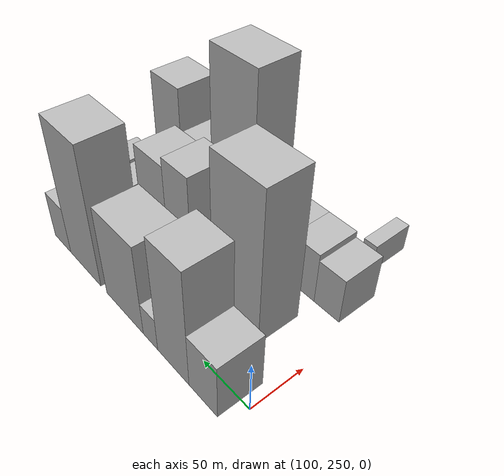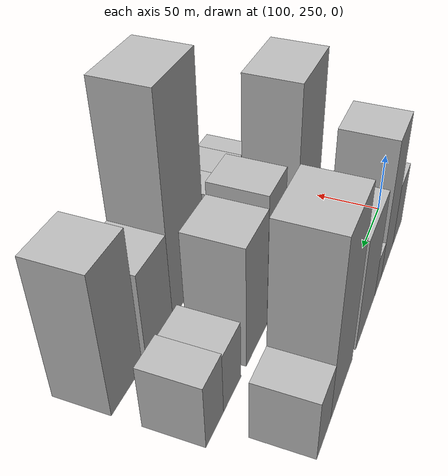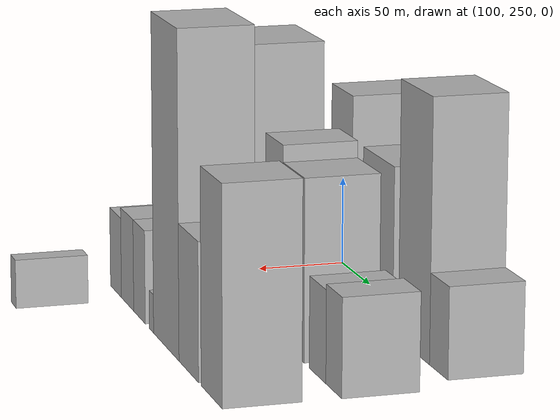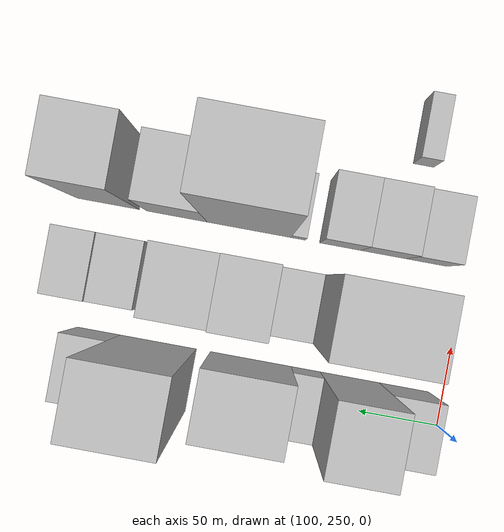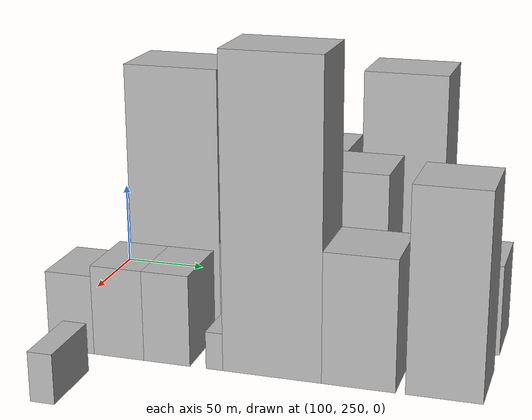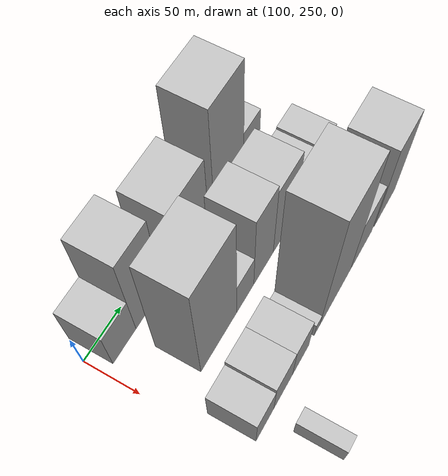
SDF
<sdf version="1.6">
 <world name="default">
  <model name="building_35">
   <static>1</static>
   <pose>100.0000 275.1679 0 0.000000 0.000000 0.000000</pose>
   <link name="link">
    <pose>0 0 27.00 0 0 0</pose>
    <collision name="collision"><geometry><box><size>40.0000 31.4303 54.0000</size></box></geometry></collision>
    <visual name="visual">
     <cast_shadows>0</cast_shadows>
     <geometry><box><size>40.0000 31.4303 54.0000</size></box></geometry>
     <material>
      <script>
       <uri>model://HANNAS_wall/materials/scripts</uri>
       <uri>model://HANNAS_wall/materials/textures</uri>
       <name>vrc/HANNAS_wall</name>
      </script>
     </material>
    </visual>
   </link>
  </model>
  <model name="building_36">
   <static>1</static>
   <pose>100.0000 309.7557 0 0.000000 0.000000 0.000000</pose>
   <link name="link">
    <pose>0 0 57.00 0 0 0</pose>
    <collision name="collision"><geometry><box><size>40.0000 37.7454 114.0000</size></box></geometry></collision>
    <visual name="visual">
     <cast_shadows>0</cast_shadows>
     <geometry><box><size>40.0000 37.7454 114.0000</size></box></geometry>
     <material>
      <script>
       <uri>model://HANNAS_wall/materials/scripts</uri>
       <uri>model://HANNAS_wall/materials/textures</uri>
       <name>vrc/HANNAS_wall</name>
      </script>
     </material>
    </visual>
   </link>
  </model>
  <model name="building_37">
   <static>1</static>
   <pose>100.0000 337.9935 0 0.000000 0.000000 0.000000</pose>
   <link name="link">
    <pose>0 0 16.50 0 0 0</pose>
    <collision name="collision"><geometry><box><size>40.0000 18.7301 33.0000</size></box></geometry></collision>
    <visual name="visual">
     <cast_shadows>0</cast_shadows>
     <geometry><box><size>40.0000 18.7301 33.0000</size></box></geometry>
     <material>
      <script>
       <uri>model://HANNAS_wall/materials/scripts</uri>
       <uri>model://HANNAS_wall/materials/textures</uri>
       <name>vrc/HANNAS_wall</name>
      </script>
     </material>
    </visual>
   </link>
  </model>
  <model name="building_38">
   <static>1</static>
   <pose>100.0000 373.1869 0 0.000000 0.000000 0.000000</pose>
   <link name="link">
    <pose>0 0 45.00 0 0 0</pose>
    <collision name="collision"><geometry><box><size>40.0000 51.6567 90.0000</size></box></geometry></collision>
    <visual name="visual">
     <cast_shadows>0</cast_shadows>
     <geometry><box><size>40.0000 51.6567 90.0000</size></box></geometry>
     <material>
      <script>
       <uri>model://HANNAS_wall/materials/scripts</uri>
       <uri>model://HANNAS_wall/materials/textures</uri>
       <name>vrc/HANNAS_wall</name>
      </script>
     </material>
    </visual>
   </link>
  </model>
  <model name="building_39">
   <static>1</static>
   <pose>100.0000 432.4017 0 0.000000 0.000000 0.000000</pose>
   <link name="link">
    <pose>0 0 69.00 0 0 0</pose>
    <collision name="collision"><geometry><box><size>40.0000 48.7731 138.0000</size></box></geometry></collision>
    <visual name="visual">
     <cast_shadows>0</cast_shadows>
     <geometry><box><size>40.0000 48.7731 138.0000</size></box></geometry>
     <material>
      <script>
       <uri>model://HANNAS_wall/materials/scripts</uri>
       <uri>model://HANNAS_wall/materials/textures</uri>
       <name>vrc/HANNAS_wall</name>
      </script>
     </material>
    </visual>
   </link>
  </model>
  <model name="building_40">
   <static>1</static>
   <pose>100.0000 470.5657 0 0.000000 0.000000 0.000000</pose>
   <link name="link">
    <pose>0 0 24.00 0 0 0</pose>
    <collision name="collision"><geometry><box><size>40.0000 27.5548 48.0000</size></box></geometry></collision>
    <visual name="visual">
     <cast_shadows>0</cast_shadows>
     <geometry><box><size>40.0000 27.5548 48.0000</size></box></geometry>
     <material>
      <script>
       <uri>model://HANNAS_wall/materials/scripts</uri>
       <uri>model://HANNAS_wall/materials/textures</uri>
       <name>vrc/HANNAS_wall</name>
      </script>
     </material>
    </visual>
   </link>
  </model>
  <model name="building_96">
   <static>1</static>
   <pose>160.0000 313.3456 0 0.000000 0.000000 0.000000</pose>
   <link name="link">
    <pose>0 0 73.50 0 0 0</pose>
    <collision name="collision"><geometry><box><size>40.0000 53.8146 147.0000</size></box></geometry></collision>
    <visual name="visual">
     <cast_shadows>0</cast_shadows>
     <geometry><box><size>40.0000 53.8146 147.0000</size></box></geometry>
     <material>
      <script>
       <uri>model://HANNAS_wall/materials/scripts</uri>
       <uri>model://HANNAS_wall/materials/textures</uri>
       <name>vrc/HANNAS_wall</name>
      </script>
     </material>
    </visual>
   </link>
  </model>
  <model name="building_97">
   <static>1</static>
   <pose>160.0000 353.4781 0 0.000000 0.000000 0.000000</pose>
   <link name="link">
    <pose>0 0 24.00 0 0 0</pose>
    <collision name="collision"><geometry><box><size>40.0000 26.4505 48.0000</size></box></geometry></collision>
    <visual name="visual">
     <cast_shadows>0</cast_shadows>
     <geometry><box><size>40.0000 26.4505 48.0000</size></box></geometry>
     <material>
      <script>
       <uri>model://HANNAS_wall/materials/scripts</uri>
       <uri>model://HANNAS_wall/materials/textures</uri>
       <name>vrc/HANNAS_wall</name>
      </script>
     </material>
    </visual>
   </link>
  </model>
  <model name="building_98">
   <static>1</static>
   <pose>160.0000 382.6065 0 0.000000 0.000000 0.000000</pose>
   <link name="link">
    <pose>0 0 52.50 0 0 0</pose>
    <collision name="collision"><geometry><box><size>40.0000 31.8062 105.0000</size></box></geometry></collision>
    <visual name="visual">
     <cast_shadows>0</cast_shadows>
     <geometry><box><size>40.0000 31.8062 105.0000</size></box></geometry>
     <material>
      <script>
       <uri>model://HANNAS_wall/materials/scripts</uri>
       <uri>model://HANNAS_wall/materials/textures</uri>
       <name>vrc/HANNAS_wall</name>
      </script>
     </material>
    </visual>
   </link>
  </model>
  <model name="building_99">
   <static>1</static>
   <pose>160.0000 417.4485 0 0.000000 0.000000 0.000000</pose>
   <link name="link">
    <pose>0 0 48.00 0 0 0</pose>
    <collision name="collision"><geometry><box><size>40.0000 37.8778 96.0000</size></box></geometry></collision>
    <visual name="visual">
     <cast_shadows>0</cast_shadows>
     <geometry><box><size>40.0000 37.8778 96.0000</size></box></geometry>
     <material>
      <script>
       <uri>model://HANNAS_wall/materials/scripts</uri>
       <uri>model://HANNAS_wall/materials/textures</uri>
       <name>vrc/HANNAS_wall</name>
      </script>
     </material>
    </visual>
   </link>
  </model>
  <model name="building_100">
   <static>1</static>
   <pose>160.0000 459.3921 0 0.000000 0.000000 0.000000</pose>
   <link name="link">
    <pose>0 0 24.00 0 0 0</pose>
    <collision name="collision"><geometry><box><size>40.0000 28.0094 48.0000</size></box></geometry></collision>
    <visual name="visual">
     <cast_shadows>0</cast_shadows>
     <geometry><box><size>40.0000 28.0094 48.0000</size></box></geometry>
     <material>
      <script>
       <uri>model://HANNAS_wall/materials/scripts</uri>
       <uri>model://HANNAS_wall/materials/textures</uri>
       <name>vrc/HANNAS_wall</name>
      </script>
     </material>
    </visual>
   </link>
  </model>
  <model name="building_101">
   <static>1</static>
   <pose>160.0000 486.3158 0 0.000000 0.000000 0.000000</pose>
   <link name="link">
    <pose>0 0 25.50 0 0 0</pose>
    <collision name="collision"><geometry><box><size>40.0000 25.8382 51.0000</size></box></geometry></collision>
    <visual name="visual">
     <cast_shadows>0</cast_shadows>
     <geometry><box><size>40.0000 25.8382 51.0000</size></box></geometry>
     <material>
      <script>
       <uri>model://HANNAS_wall/materials/scripts</uri>
       <uri>model://HANNAS_wall/materials/textures</uri>
       <name>vrc/HANNAS_wall</name>
      </script>
     </material>
    </visual>
   </link>
  </model>
  <model name="building_151">
   <static>1</static>
   <pose>220.0000 275.5493 0 0.000000 0.000000 0.000000</pose>
   <link name="link">
    <pose>0 0 22.50 0 0 0</pose>
    <collision name="collision"><geometry><box><size>40.0000 26.4049 45.0000</size></box></geometry></collision>
    <visual name="visual">
     <cast_shadows>0</cast_shadows>
     <geometry><box><size>40.0000 26.4049 45.0000</size></box></geometry>
     <material>
      <script>
       <uri>model://HANNAS_wall/materials/scripts</uri>
       <uri>model://HANNAS_wall/materials/textures</uri>
       <name>vrc/HANNAS_wall</name>
      </script>
     </material>
    </visual>
   </link>
  </model>
  <model name="building_152">
   <static>1</static>
   <pose>220.0000 303.2090 0 0.000000 0.000000 0.000000</pose>
   <link name="link">
    <pose>0 0 25.50 0 0 0</pose>
    <collision name="collision"><geometry><box><size>40.0000 28.9145 51.0000</size></box></geometry></collision>
    <visual name="visual">
     <cast_shadows>0</cast_shadows>
     <geometry><box><size>40.0000 28.9145 51.0000</size></box></geometry>
     <material>
      <script>
       <uri>model://HANNAS_wall/materials/scripts</uri>
       <uri>model://HANNAS_wall/materials/textures</uri>
       <name>vrc/HANNAS_wall</name>
      </script>
     </material>
    </visual>
   </link>
  </model>
  <model name="building_153">
   <static>1</static>
   <pose>220.0000 330.7737 0 0.000000 0.000000 0.000000</pose>
   <link name="link">
    <pose>0 0 25.50 0 0 0</pose>
    <collision name="collision"><geometry><box><size>40.0000 26.2148 51.0000</size></box></geometry></collision>
    <visual name="visual">
     <cast_shadows>0</cast_shadows>
     <geometry><box><size>40.0000 26.2148 51.0000</size></box></geometry>
     <material>
      <script>
       <uri>model://HANNAS_wall/materials/scripts</uri>
       <uri>model://HANNAS_wall/materials/textures</uri>
       <name>vrc/HANNAS_wall</name>
      </script>
     </material>
    </visual>
   </link>
  </model>
  <model name="building_154">
   <static>1</static>
   <pose>220.0000 357.5313 0 0.000000 0.000000 0.000000</pose>
   <link name="link">
    <pose>0 0 10.50 0 0 0</pose>
    <collision name="collision"><geometry><box><size>40.0000 9.3004 21.0000</size></box></geometry></collision>
    <visual name="visual">
     <cast_shadows>0</cast_shadows>
     <geometry><box><size>40.0000 9.3004 21.0000</size></box></geometry>
     <material>
      <script>
       <uri>model://HANNAS_wall/materials/scripts</uri>
       <uri>model://HANNAS_wall/materials/textures</uri>
       <name>vrc/HANNAS_wall</name>
      </script>
     </material>
    </visual>
   </link>
  </model>
  <model name="building_155">
   <static>1</static>
   <pose>220.0000 388.9571 0 0.000000 0.000000 0.000000</pose>
   <link name="link">
    <pose>0 0 85.50 0 0 0</pose>
    <collision name="collision"><geometry><box><size>40.0000 53.5513 171.0000</size></box></geometry></collision>
    <visual name="visual">
     <cast_shadows>0</cast_shadows>
     <geometry><box><size>40.0000 53.5513 171.0000</size></box></geometry>
     <material>
      <script>
       <uri>model://HANNAS_wall/materials/scripts</uri>
       <uri>model://HANNAS_wall/materials/textures</uri>
       <name>vrc/HANNAS_wall</name>
      </script>
     </material>
    </visual>
   </link>
  </model>
  <model name="building_156">
   <static>1</static>
   <pose>220.0000 435.1000 0 0.000000 0.000000 0.000000</pose>
   <link name="link">
    <pose>0 0 36.00 0 0 0</pose>
    <collision name="collision"><geometry><box><size>40.0000 38.7345 72.0000</size></box></geometry></collision>
    <visual name="visual">
     <cast_shadows>0</cast_shadows>
     <geometry><box><size>40.0000 38.7345 72.0000</size></box></geometry>
     <material>
      <script>
       <uri>model://HANNAS_wall/materials/scripts</uri>
       <uri>model://HANNAS_wall/materials/textures</uri>
       <name>vrc/HANNAS_wall</name>
      </script>
     </material>
    </visual>
   </link>
  </model>
  <model name="building_157">
   <static>1</static>
   <pose>220.0000 479.2156 0 0.000000 0.000000 0.000000</pose>
   <link name="link">
    <pose>0 0 55.50 0 0 0</pose>
    <collision name="collision"><geometry><box><size>40.0000 39.4967 111.0000</size></box></geometry></collision>
    <visual name="visual">
     <cast_shadows>0</cast_shadows>
     <geometry><box><size>40.0000 39.4967 111.0000</size></box></geometry>
     <material>
      <script>
       <uri>model://HANNAS_wall/materials/scripts</uri>
       <uri>model://HANNAS_wall/materials/textures</uri>
       <name>vrc/HANNAS_wall</name>
      </script>
     </material>
    </visual>
   </link>
  </model>
  <model name="building_201">
   <static>1</static>
   <pose>280.0000 288.0906 0 0.000000 0.000000 0.000000</pose>
   <link name="link">
    <pose>0 0 13.50 0 0 0</pose>
    <collision name="collision"><geometry><box><size>40.0000 13.2517 27.0000</size></box></geometry></collision>
    <visual name="visual">
     <cast_shadows>0</cast_shadows>
     <geometry><box><size>40.0000 13.2517 27.0000</size></box></geometry>
     <material>
      <script>
       <uri>model://HANNAS_wall/materials/scripts</uri>
       <uri>model://HANNAS_wall/materials/textures</uri>
       <name>vrc/HANNAS_wall</name>
      </script>
     </material>
    </visual>
   </link>
  </model>
 </world>
</sdf>
